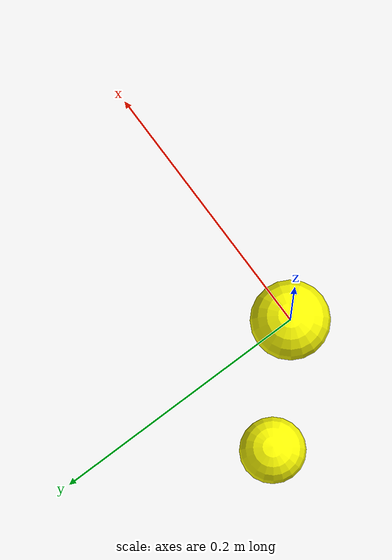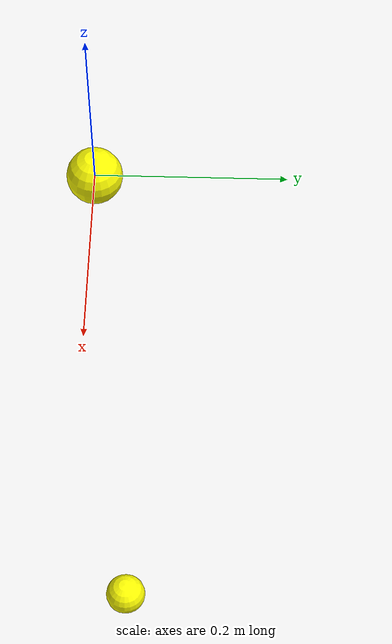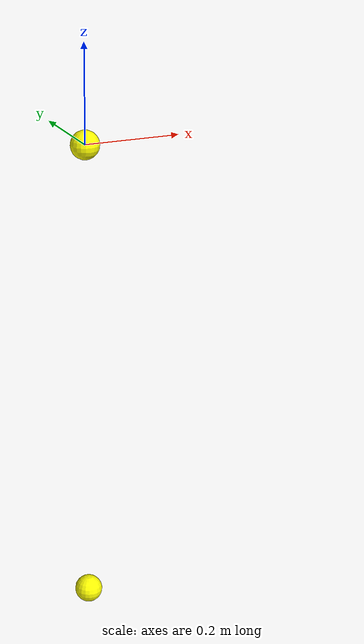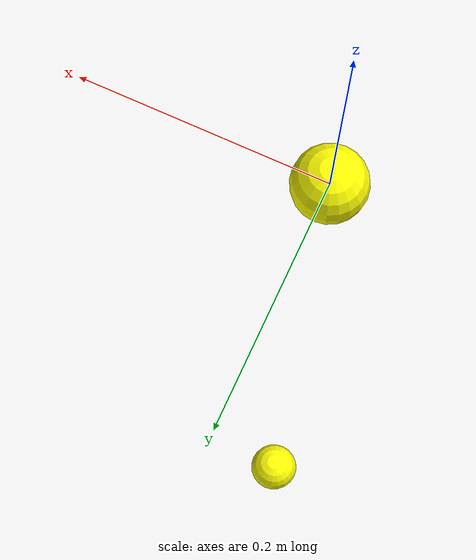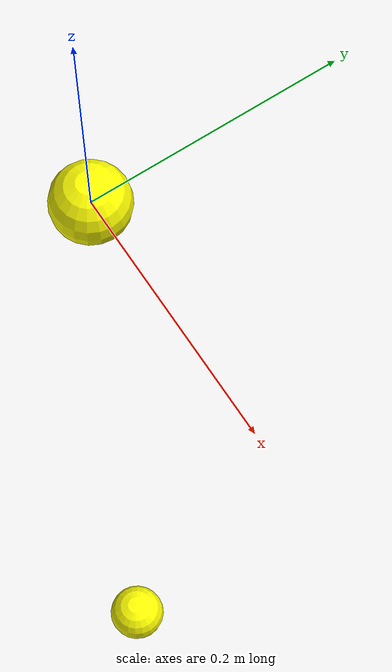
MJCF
<mujoco model="1_3D_model_w_N25">
  <compiler inertiafromgeom="auto" angle="radian" />
   <option timestep="0.0001" iterations="50" solver="PGS" integrator="Euler" gravity="0 0 -9.81" collision="all">
     <flag energy="enable" />
   </option>
   <asset>
     <texture type="skybox" builtin="checker" rgb1=".1 .2 .3" rgb2=".2 .3 .4" width="200" height="200" mark="edge" />
      <material name="JointColor" rgba="1.0 1.0 0.0 1" />
      <material name="LimbColor" rgba="0.7 0.7 0.7 1" />
      <material name="pointMassColor" rgba="1.0 1.0 0.0 1" />
      <material name="RefMassColor" rgba="0.2 0.9 0.1 1.0" />
   </asset>
   <worldbody>
     <body name="cameramover" mocap="true" pos="0 0 0">
        <camera name="mycamera" pos="0.0 2.0 2.0" euler="1.5707 0 0" />
      </body>
      <body name="BODY1" pos="0 0 0" euler="0 0 0">
        <inertial pos="0 0 0" mass="1.595" />
         <geom name="GEOM1" type="sphere" pos="0 0 0" material="JointColor" size="0.0294" mass="2" />
         <joint name="shoulderFlexExt" ref="0" type="hinge" stiffness="0" pos = "0 0 0" axis = "0 1 0" />-->
         <body name="BODY2" pos="0 0 0" euler="0 0 0">
    				<site name='forForceSensorSite' pos='0 0 0' />   <!-- Attaching force sensor -->
            <geom name="GEOM2" type="sphere" pos="0 0 -1" material="JointColor" size="0.0294" mass="2" />
         </body>
      </body>

   </worldbody>

   <sensor>
       <force name = 'wristForceSensorSite' site = 'forForceSensorSite' />
   </sensor>

</mujoco>
